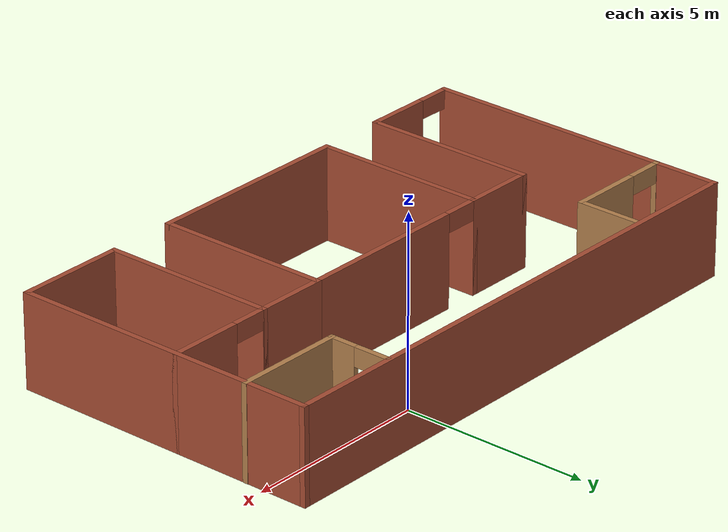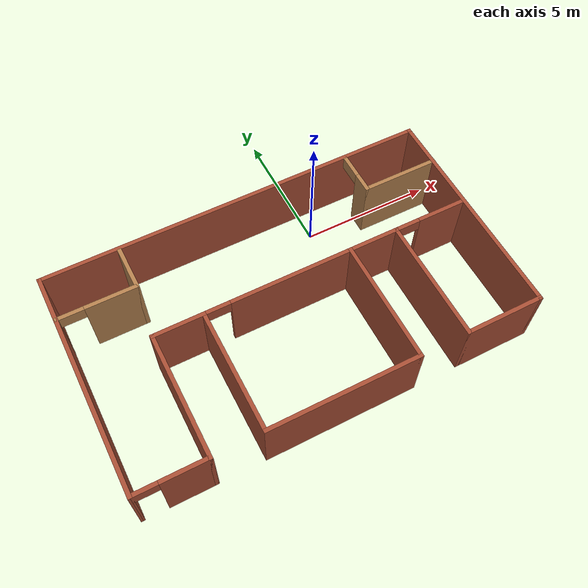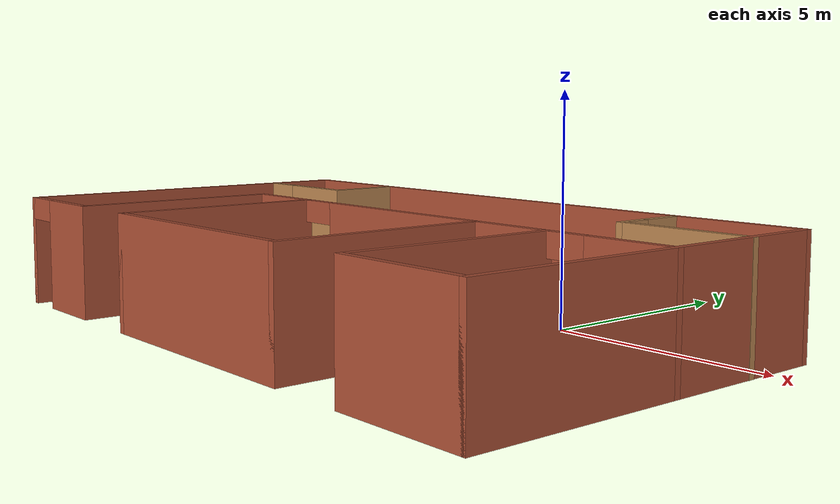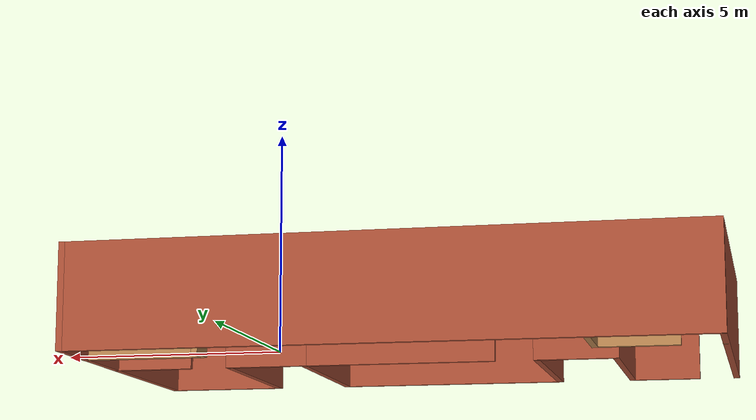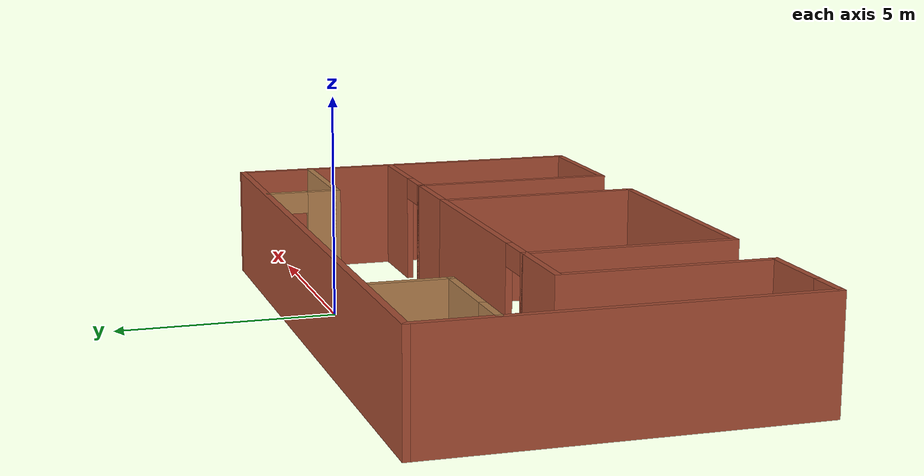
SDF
<?xml version='1.0'?>
<sdf version='1.6'>
  <model name='mybuilding2'>
    <pose frame=''>-2.54317 -3.04333 0 0 -0 0</pose>
    <link name='Wall_1'>
      <collision name='Wall_1_Collision'>
        <geometry>
          <box>
            <size>8.5 0.15 2.5</size>
          </box>
        </geometry>
        <pose frame=''>0 0 1.25 0 -0 0</pose>
      </collision>
      <visual name='Wall_1_Visual'>
        <pose frame=''>0 0 1.25 0 -0 0</pose>
        <geometry>
          <box>
            <size>8.5 0.15 2.5</size>
          </box>
        </geometry>
        <material>
          <script>
            <uri>file://media/materials/scripts/gazebo.material</uri>
            <name>Gazebo/Bricks</name>
          </script>
          <ambient>1 1 1 1</ambient>
        </material>
        <meta>
          <layer>0</layer>
        </meta>
      </visual>
      <pose frame=''>-7.37922 0 0 0 0 -1.5708</pose>
    </link>
    <link name='Wall_10'>
      <collision name='Wall_10_Collision'>
        <geometry>
          <box>
            <size>3 0.15 2.5</size>
          </box>
        </geometry>
        <pose frame=''>0 0 1.25 0 -0 0</pose>
      </collision>
      <visual name='Wall_10_Visual'>
        <pose frame=''>0 0 1.25 0 -0 0</pose>
        <geometry>
          <box>
            <size>3 0.15 2.5</size>
          </box>
        </geometry>
        <material>
          <script>
            <uri>file://media/materials/scripts/gazebo.material</uri>
            <name>Gazebo/Bricks</name>
          </script>
          <ambient>1 1 1 1</ambient>
        </material>
        <meta>
          <layer>0</layer>
        </meta>
      </visual>
      <pose frame=''>5.94578 -4.175 0 0 -0 0</pose>
    </link>
    <link name='Wall_11'>
      <collision name='Wall_11_Collision'>
        <geometry>
          <box>
            <size>8.5 0.15 2.5</size>
          </box>
        </geometry>
        <pose frame=''>0 0 1.25 0 -0 0</pose>
      </collision>
      <visual name='Wall_11_Visual'>
        <pose frame=''>0 0 1.25 0 -0 0</pose>
        <geometry>
          <box>
            <size>8.5 0.15 2.5</size>
          </box>
        </geometry>
        <material>
          <script>
            <uri>file://media/materials/scripts/gazebo.material</uri>
            <name>Gazebo/Bricks</name>
          </script>
          <ambient>1 1 1 1</ambient>
        </material>
        <meta>
          <layer>0</layer>
        </meta>
      </visual>
      <pose frame=''>7.37078 0 0 0 -0 1.5708</pose>
    </link>
    <link name='Wall_12'>
      <collision name='Wall_12_Collision'>
        <geometry>
          <box>
            <size>14.9 0.15 2.5</size>
          </box>
        </geometry>
        <pose frame=''>0 0 1.25 0 -0 0</pose>
      </collision>
      <visual name='Wall_12_Visual'>
        <pose frame=''>0 0 1.25 0 -0 0</pose>
        <geometry>
          <box>
            <size>14.9 0.15 2.5</size>
          </box>
        </geometry>
        <material>
          <script>
            <uri>file://media/materials/scripts/gazebo.material</uri>
            <name>Gazebo/Bricks</name>
          </script>
          <ambient>1 1 1 1</ambient>
        </material>
        <meta>
          <layer>0</layer>
        </meta>
      </visual>
      <pose frame=''>-0.004225 4.175 0 0 -0 3.14159</pose>
    </link>
    <link name='Wall_14'>
      <pose frame=''>-5.92381 2.45641 0 0 -0 0</pose>
      <visual name='Wall_14_Visual_0'>
        <pose frame=''>-1.43656 0 1.25 0 -0 0</pose>
        <geometry>
          <box>
            <size>0.126889 0.15 2.5</size>
          </box>
        </geometry>
        <material>
          <script>
            <uri>file://media/materials/scripts/gazebo.material</uri>
            <name>Gazebo/Wood</name>
          </script>
          <ambient>1 1 1 1</ambient>
        </material>
        <meta>
          <layer>0</layer>
        </meta>
      </visual>
      <collision name='Wall_14_Collision_0'>
        <geometry>
          <box>
            <size>0.126889 0.15 2.5</size>
          </box>
        </geometry>
        <pose frame=''>-1.43656 0 1.25 0 -0 0</pose>
      </collision>
      <visual name='Wall_14_Visual_1'>
        <pose frame=''>0.513445 0 1.25 0 -0 0</pose>
        <geometry>
          <box>
            <size>1.97311 0.15 2.5</size>
          </box>
        </geometry>
        <material>
          <script>
            <uri>file://media/materials/scripts/gazebo.material</uri>
            <name>Gazebo/Wood</name>
          </script>
          <ambient>1 1 1 1</ambient>
        </material>
        <meta>
          <layer>0</layer>
        </meta>
      </visual>
      <collision name='Wall_14_Collision_1'>
        <geometry>
          <box>
            <size>1.97311 0.15 2.5</size>
          </box>
        </geometry>
        <pose frame=''>0.513445 0 1.25 0 -0 0</pose>
      </collision>
      <visual name='Wall_14_Visual_2'>
        <pose frame=''>-0.923111 0 2.25 0 -0 0</pose>
        <geometry>
          <box>
            <size>0.9 0.15 0.5</size>
          </box>
        </geometry>
        <material>
          <script>
            <uri>file://media/materials/scripts/gazebo.material</uri>
            <name>Gazebo/Wood</name>
          </script>
          <ambient>1 1 1 1</ambient>
        </material>
        <meta>
          <layer>0</layer>
        </meta>
      </visual>
      <collision name='Wall_14_Collision_2'>
        <geometry>
          <box>
            <size>0.9 0.15 0.5</size>
          </box>
        </geometry>
        <pose frame=''>-0.923111 0 2.25 0 -0 0</pose>
      </collision>
    </link>
    <link name='Wall_15'>
      <collision name='Wall_15_Collision'>
        <geometry>
          <box>
            <size>1.75 0.15 2.5</size>
          </box>
        </geometry>
        <pose frame=''>0 0 1.25 0 -0 0</pose>
      </collision>
      <visual name='Wall_15_Visual'>
        <pose frame=''>0 0 1.25 0 -0 0</pose>
        <geometry>
          <box>
            <size>1.75 0.15 2.5</size>
          </box>
        </geometry>
        <material>
          <script>
            <uri>file://media/materials/scripts/gazebo.material</uri>
            <name>Gazebo/Wood</name>
          </script>
          <ambient>1 1 1 1</ambient>
        </material>
        <meta>
          <layer>0</layer>
        </meta>
      </visual>
      <pose frame=''>-4.49881 3.25641 0 0 -0 1.5708</pose>
    </link>
    <link name='Wall_17'>
      <pose frame=''>-0.129225 0.425 0 0 -0 0</pose>
      <visual name='Wall_17_Visual_0'>
        <pose frame=''>-2.80087 0 1.25 0 -0 0</pose>
        <geometry>
          <box>
            <size>0.148262 0.15 2.5</size>
          </box>
        </geometry>
        <material>
          <script>
            <uri>file://media/materials/scripts/gazebo.material</uri>
            <name>Gazebo/Bricks</name>
          </script>
          <ambient>1 1 1 1</ambient>
        </material>
        <meta>
          <layer>0</layer>
        </meta>
      </visual>
      <collision name='Wall_17_Collision_0'>
        <geometry>
          <box>
            <size>0.148262 0.15 2.5</size>
          </box>
        </geometry>
        <pose frame=''>-2.80087 0 1.25 0 -0 0</pose>
      </collision>
      <visual name='Wall_17_Visual_1'>
        <pose frame=''>0.524131 0 1.25 0 -0 0</pose>
        <geometry>
          <box>
            <size>4.70174 0.15 2.5</size>
          </box>
        </geometry>
        <material>
          <script>
            <uri>file://media/materials/scripts/gazebo.material</uri>
            <name>Gazebo/Bricks</name>
          </script>
          <ambient>1 1 1 1</ambient>
        </material>
        <meta>
          <layer>0</layer>
        </meta>
      </visual>
      <collision name='Wall_17_Collision_1'>
        <geometry>
          <box>
            <size>4.70174 0.15 2.5</size>
          </box>
        </geometry>
        <pose frame=''>0.524131 0 1.25 0 -0 0</pose>
      </collision>
      <visual name='Wall_17_Visual_2'>
        <pose frame=''>-2.27674 0 2.25 0 -0 0</pose>
        <geometry>
          <box>
            <size>0.9 0.15 0.5</size>
          </box>
        </geometry>
        <material>
          <script>
            <uri>file://media/materials/scripts/gazebo.material</uri>
            <name>Gazebo/Bricks</name>
          </script>
          <ambient>1 1 1 1</ambient>
        </material>
        <meta>
          <layer>0</layer>
        </meta>
      </visual>
      <collision name='Wall_17_Collision_2'>
        <geometry>
          <box>
            <size>0.9 0.15 0.5</size>
          </box>
        </geometry>
        <pose frame=''>-2.27674 0 2.25 0 -0 0</pose>
      </collision>
    </link>
    <link name='Wall_19'>
      <pose frame=''>5.94578 0.425 0 0 -0 0</pose>
      <visual name='Wall_19_Visual_0'>
        <pose frame=''>-1.43993 0 1.25 0 -0 0</pose>
        <geometry>
          <box>
            <size>0.120131 0.15 2.5</size>
          </box>
        </geometry>
        <material>
          <script>
            <uri>file://media/materials/scripts/gazebo.material</uri>
            <name>Gazebo/Bricks</name>
          </script>
          <ambient>1 1 1 1</ambient>
        </material>
        <meta>
          <layer>0</layer>
        </meta>
      </visual>
      <collision name='Wall_19_Collision_0'>
        <geometry>
          <box>
            <size>0.120131 0.15 2.5</size>
          </box>
        </geometry>
        <pose frame=''>-1.43993 0 1.25 0 -0 0</pose>
      </collision>
      <visual name='Wall_19_Visual_1'>
        <pose frame=''>0.510066 0 1.25 0 -0 0</pose>
        <geometry>
          <box>
            <size>1.97987 0.15 2.5</size>
          </box>
        </geometry>
        <material>
          <script>
            <uri>file://media/materials/scripts/gazebo.material</uri>
            <name>Gazebo/Bricks</name>
          </script>
          <ambient>1 1 1 1</ambient>
        </material>
        <meta>
          <layer>0</layer>
        </meta>
      </visual>
      <collision name='Wall_19_Collision_1'>
        <geometry>
          <box>
            <size>1.97987 0.15 2.5</size>
          </box>
        </geometry>
        <pose frame=''>0.510066 0 1.25 0 -0 0</pose>
      </collision>
      <visual name='Wall_19_Visual_2'>
        <pose frame=''>-0.929869 0 2.25 0 -0 0</pose>
        <geometry>
          <box>
            <size>0.9 0.15 0.5</size>
          </box>
        </geometry>
        <material>
          <script>
            <uri>file://media/materials/scripts/gazebo.material</uri>
            <name>Gazebo/Bricks</name>
          </script>
          <ambient>1 1 1 1</ambient>
        </material>
        <meta>
          <layer>0</layer>
        </meta>
      </visual>
      <collision name='Wall_19_Collision_2'>
        <geometry>
          <box>
            <size>0.9 0.15 0.5</size>
          </box>
        </geometry>
        <pose frame=''>-0.929869 0 2.25 0 -0 0</pose>
      </collision>
    </link>
    <link name='Wall_2'>
      <pose frame=''>-6.07923 -4.175 0 0 -0 0</pose>
      <visual name='Wall_2_Visual_0'>
        <pose frame=''>-1.33437 0 1.25 0 -0 0</pose>
        <geometry>
          <box>
            <size>0.081262 0.15 2.5</size>
          </box>
        </geometry>
        <material>
          <script>
            <uri>file://media/materials/scripts/gazebo.material</uri>
            <name>Gazebo/Bricks</name>
          </script>
          <ambient>1 1 1 1</ambient>
        </material>
        <meta>
          <layer>0</layer>
        </meta>
      </visual>
      <collision name='Wall_2_Collision_0'>
        <geometry>
          <box>
            <size>0.081262 0.15 2.5</size>
          </box>
        </geometry>
        <pose frame=''>-1.33437 0 1.25 0 -0 0</pose>
      </collision>
      <visual name='Wall_2_Visual_1'>
        <pose frame=''>0.490631 0 1.25 0 -0 0</pose>
        <geometry>
          <box>
            <size>1.76874 0.15 2.5</size>
          </box>
        </geometry>
        <material>
          <script>
            <uri>file://media/materials/scripts/gazebo.material</uri>
            <name>Gazebo/Bricks</name>
          </script>
          <ambient>1 1 1 1</ambient>
        </material>
        <meta>
          <layer>0</layer>
        </meta>
      </visual>
      <collision name='Wall_2_Collision_1'>
        <geometry>
          <box>
            <size>1.76874 0.15 2.5</size>
          </box>
        </geometry>
        <pose frame=''>0.490631 0 1.25 0 -0 0</pose>
      </collision>
      <visual name='Wall_2_Visual_2'>
        <pose frame=''>-0.843738 0 2.25 0 -0 0</pose>
        <geometry>
          <box>
            <size>0.9 0.15 0.5</size>
          </box>
        </geometry>
        <material>
          <script>
            <uri>file://media/materials/scripts/gazebo.material</uri>
            <name>Gazebo/Bricks</name>
          </script>
          <ambient>1 1 1 1</ambient>
        </material>
        <meta>
          <layer>0</layer>
        </meta>
      </visual>
      <collision name='Wall_2_Collision_2'>
        <geometry>
          <box>
            <size>0.9 0.15 0.5</size>
          </box>
        </geometry>
        <pose frame=''>-0.843738 0 2.25 0 -0 0</pose>
      </collision>
    </link>
    <link name='Wall_21'>
      <pose frame=''>4.52923 3.29896 0 0 0 -1.5708</pose>
      <visual name='Wall_21_Visual_0'>
        <pose frame=''>-0.841973 0 1.25 0 -0 0</pose>
        <geometry>
          <box>
            <size>0.066054 0.15 2.5</size>
          </box>
        </geometry>
        <material>
          <script>
            <uri>file://media/materials/scripts/gazebo.material</uri>
            <name>Gazebo/Wood</name>
          </script>
          <ambient>1 1 1 1</ambient>
        </material>
        <meta>
          <layer>0</layer>
        </meta>
      </visual>
      <collision name='Wall_21_Collision_0'>
        <geometry>
          <box>
            <size>0.066054 0.15 2.5</size>
          </box>
        </geometry>
        <pose frame=''>-0.841973 0 1.25 0 -0 0</pose>
      </collision>
      <visual name='Wall_21_Visual_1'>
        <pose frame=''>0.483027 0 1.25 0 -0 0</pose>
        <geometry>
          <box>
            <size>0.783946 0.15 2.5</size>
          </box>
        </geometry>
        <material>
          <script>
            <uri>file://media/materials/scripts/gazebo.material</uri>
            <name>Gazebo/Wood</name>
          </script>
          <ambient>1 1 1 1</ambient>
        </material>
        <meta>
          <layer>0</layer>
        </meta>
      </visual>
      <collision name='Wall_21_Collision_1'>
        <geometry>
          <box>
            <size>0.783946 0.15 2.5</size>
          </box>
        </geometry>
        <pose frame=''>0.483027 0 1.25 0 -0 0</pose>
      </collision>
      <visual name='Wall_21_Visual_2'>
        <pose frame=''>-0.358946 0 2.25 0 -0 0</pose>
        <geometry>
          <box>
            <size>0.9 0.15 0.5</size>
          </box>
        </geometry>
        <material>
          <script>
            <uri>file://media/materials/scripts/gazebo.material</uri>
            <name>Gazebo/Wood</name>
          </script>
          <ambient>1 1 1 1</ambient>
        </material>
        <meta>
          <layer>0</layer>
        </meta>
      </visual>
      <collision name='Wall_21_Collision_2'>
        <geometry>
          <box>
            <size>0.9 0.15 0.5</size>
          </box>
        </geometry>
        <pose frame=''>-0.358946 0 2.25 0 -0 0</pose>
      </collision>
    </link>
    <link name='Wall_22'>
      <collision name='Wall_22_Collision'>
        <geometry>
          <box>
            <size>3 0.15 2.5</size>
          </box>
        </geometry>
        <pose frame=''>0 0 1.25 0 -0 0</pose>
      </collision>
      <visual name='Wall_22_Visual'>
        <pose frame=''>0 0 1.25 0 -0 0</pose>
        <geometry>
          <box>
            <size>3 0.15 2.5</size>
          </box>
        </geometry>
        <material>
          <script>
            <uri>file://media/materials/scripts/gazebo.material</uri>
            <name>Gazebo/Wood</name>
          </script>
          <ambient>1 1 1 1</ambient>
        </material>
        <meta>
          <layer>0</layer>
        </meta>
      </visual>
      <pose frame=''>5.95423 2.49896 0 0 -0 0</pose>
    </link>
    <link name='Wall_3'>
      <collision name='Wall_3_Collision'>
        <geometry>
          <box>
            <size>4.75 0.15 2.5</size>
          </box>
        </geometry>
        <pose frame=''>0 0 1.25 0 -0 0</pose>
      </collision>
      <visual name='Wall_3_Visual'>
        <pose frame=''>0 0 1.25 0 -0 0</pose>
        <geometry>
          <box>
            <size>4.75 0.15 2.5</size>
          </box>
        </geometry>
        <material>
          <script>
            <uri>file://media/materials/scripts/gazebo.material</uri>
            <name>Gazebo/Bricks</name>
          </script>
          <ambient>1 1 1 1</ambient>
        </material>
        <meta>
          <layer>0</layer>
        </meta>
      </visual>
      <pose frame=''>-4.77923 -1.875 0 0 -0 1.5708</pose>
    </link>
    <link name='Wall_4'>
      <collision name='Wall_4_Collision'>
        <geometry>
          <box>
            <size>2 0.15 2.5</size>
          </box>
        </geometry>
        <pose frame=''>0 0 1.25 0 -0 0</pose>
      </collision>
      <visual name='Wall_4_Visual'>
        <pose frame=''>0 0 1.25 0 -0 0</pose>
        <geometry>
          <box>
            <size>2 0.15 2.5</size>
          </box>
        </geometry>
        <material>
          <script>
            <uri>file://media/materials/scripts/gazebo.material</uri>
            <name>Gazebo/Bricks</name>
          </script>
          <ambient>1 1 1 1</ambient>
        </material>
        <meta>
          <layer>0</layer>
        </meta>
      </visual>
      <pose frame=''>-3.85423 0.425 0 0 -0 0</pose>
    </link>
    <link name='Wall_5'>
      <collision name='Wall_5_Collision'>
        <geometry>
          <box>
            <size>4.75 0.15 2.5</size>
          </box>
        </geometry>
        <pose frame=''>0 0 1.25 0 -0 0</pose>
      </collision>
      <visual name='Wall_5_Visual'>
        <pose frame=''>0 0 1.25 0 -0 0</pose>
        <geometry>
          <box>
            <size>4.75 0.15 2.5</size>
          </box>
        </geometry>
        <material>
          <script>
            <uri>file://media/materials/scripts/gazebo.material</uri>
            <name>Gazebo/Bricks</name>
          </script>
          <ambient>1 1 1 1</ambient>
        </material>
        <meta>
          <layer>0</layer>
        </meta>
      </visual>
      <pose frame=''>-2.92923 -1.875 0 0 0 -1.5708</pose>
    </link>
    <link name='Wall_6'>
      <collision name='Wall_6_Collision'>
        <geometry>
          <box>
            <size>5.75 0.15 2.5</size>
          </box>
        </geometry>
        <pose frame=''>0 0 1.25 0 -0 0</pose>
      </collision>
      <visual name='Wall_6_Visual'>
        <pose frame=''>0 0 1.25 0 -0 0</pose>
        <geometry>
          <box>
            <size>5.75 0.15 2.5</size>
          </box>
        </geometry>
        <material>
          <script>
            <uri>file://media/materials/scripts/gazebo.material</uri>
            <name>Gazebo/Bricks</name>
          </script>
          <ambient>1 1 1 1</ambient>
        </material>
        <meta>
          <layer>0</layer>
        </meta>
      </visual>
      <pose frame=''>-0.129225 -4.175 0 0 -0 0</pose>
    </link>
    <link name='Wall_7'>
      <collision name='Wall_7_Collision'>
        <geometry>
          <box>
            <size>4.75 0.15 2.5</size>
          </box>
        </geometry>
        <pose frame=''>0 0 1.25 0 -0 0</pose>
      </collision>
      <visual name='Wall_7_Visual'>
        <pose frame=''>0 0 1.25 0 -0 0</pose>
        <geometry>
          <box>
            <size>4.75 0.15 2.5</size>
          </box>
        </geometry>
        <material>
          <script>
            <uri>file://media/materials/scripts/gazebo.material</uri>
            <name>Gazebo/Bricks</name>
          </script>
          <ambient>1 1 1 1</ambient>
        </material>
        <meta>
          <layer>0</layer>
        </meta>
      </visual>
      <pose frame=''>2.67077 -1.875 0 0 -0 1.5708</pose>
    </link>
    <link name='Wall_8'>
      <collision name='Wall_8_Collision'>
        <geometry>
          <box>
            <size>2 0.15 2.5</size>
          </box>
        </geometry>
        <pose frame=''>0 0 1.25 0 -0 0</pose>
      </collision>
      <visual name='Wall_8_Visual'>
        <pose frame=''>0 0 1.25 0 -0 0</pose>
        <geometry>
          <box>
            <size>2 0.15 2.5</size>
          </box>
        </geometry>
        <material>
          <script>
            <uri>file://media/materials/scripts/gazebo.material</uri>
            <name>Gazebo/Bricks</name>
          </script>
          <ambient>1 1 1 1</ambient>
        </material>
        <meta>
          <layer>0</layer>
        </meta>
      </visual>
      <pose frame=''>3.59578 0.425 0 0 -0 0</pose>
    </link>
    <link name='Wall_9'>
      <collision name='Wall_9_Collision'>
        <geometry>
          <box>
            <size>4.75 0.15 2.5</size>
          </box>
        </geometry>
        <pose frame=''>0 0 1.25 0 -0 0</pose>
      </collision>
      <visual name='Wall_9_Visual'>
        <pose frame=''>0 0 1.25 0 -0 0</pose>
        <geometry>
          <box>
            <size>4.75 0.15 2.5</size>
          </box>
        </geometry>
        <material>
          <script>
            <uri>file://media/materials/scripts/gazebo.material</uri>
            <name>Gazebo/Bricks</name>
          </script>
          <ambient>1 1 1 1</ambient>
        </material>
        <meta>
          <layer>0</layer>
        </meta>
      </visual>
      <pose frame=''>4.52078 -1.875 0 0 0 -1.5708</pose>
    </link>
    <static>1</static>
  </model>
</sdf>
